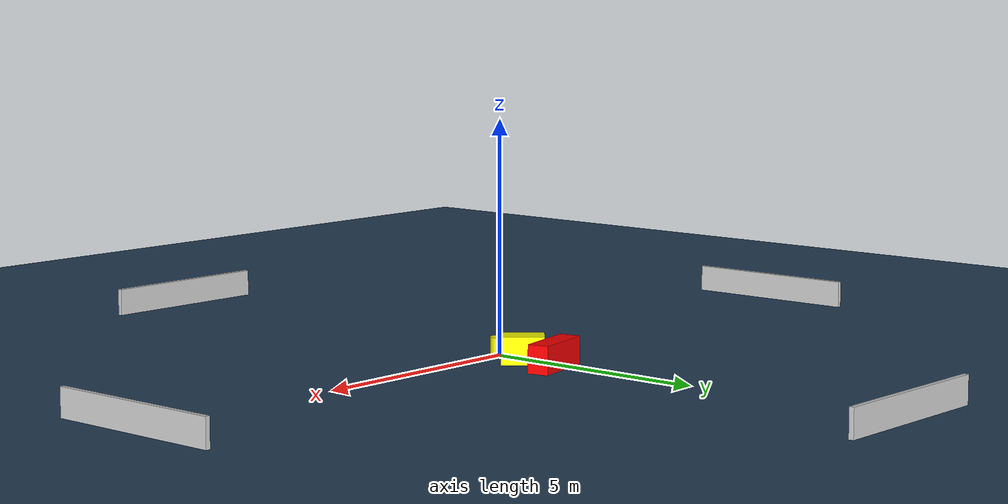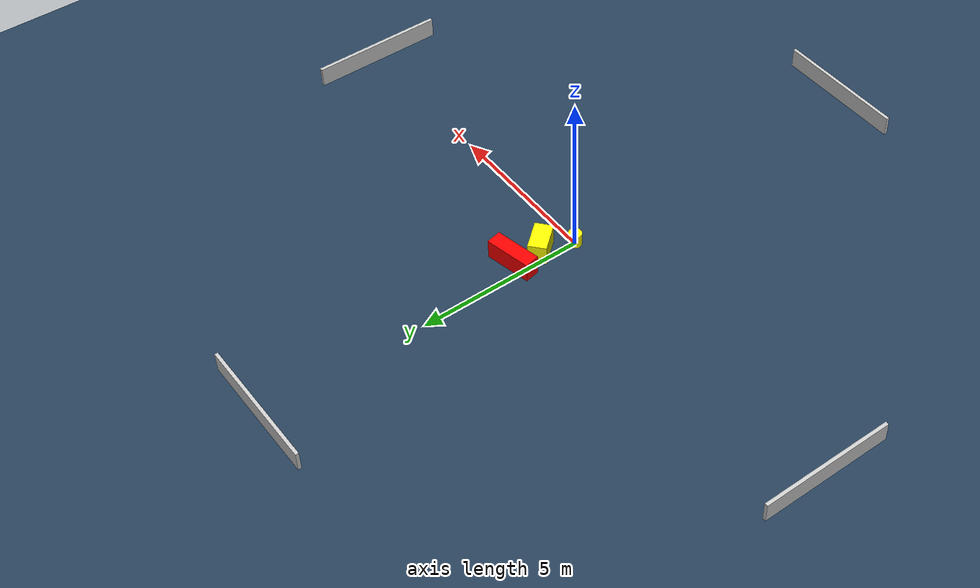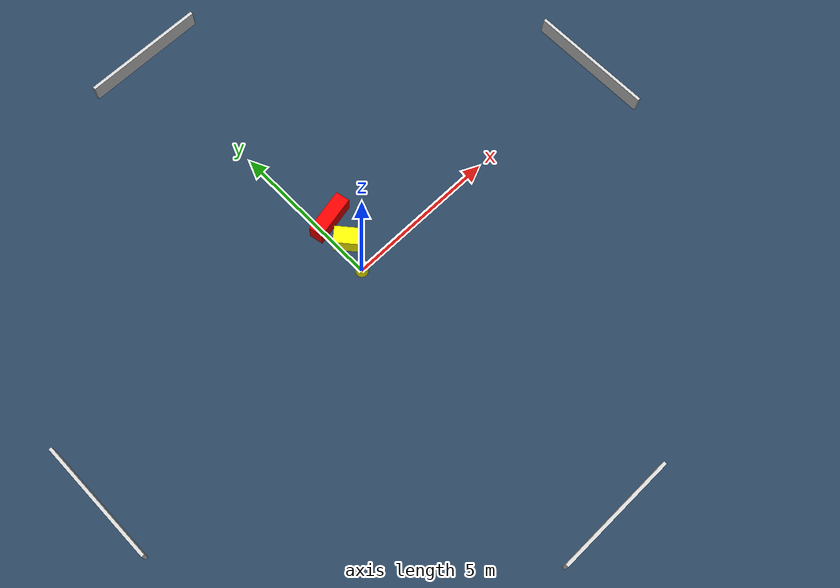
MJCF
<?xml version="1.0" ?>
<mujoco model="generated_environment">
  <option timestep="0.01" integrator="RK4" cone="elliptic"/>
  <default>
    <geom density="1"/>
  </default>
  <asset>
    <texture builtin="gradient" height="3072" name="skybox" rgb1="0.3 0.5 0.7" rgb2="0 0 0" type="skybox" width="512"/>
    <texture builtin="checker" height="300" name="groundplane" rgb1="0.2 0.3 0.4" rgb2="0.1 0.2 0.3" type="2d" width="300"/>
    <material name="groundplane" reflectance="0.2" texrepeat="5 5" texture="groundplane"/>
  </asset>
  <worldbody>
    <light dir="0 0 -1" directional="true" pos="0 0 1.5"/>
    <geom condim="3" friction="0.5 0.005 0.001" material="groundplane" name="floor" pos="0 0 0" size="0 0 0.05" type="plane"/>
    <body name="walls">
      <geom name="wall_1" condim="4" pos="-10.0 0.0 0.3" rgba="0.800000011920929 0.800000011920929 0.800000011920929 1.0" size="0.05 2.0 0.3" type="box"/>
      <geom name="wall_2" condim="4" pos="10.0 0.0 0.3" rgba="0.800000011920929 0.800000011920929 0.800000011920929 1.0" size="0.05 2.0 0.3" type="box"/>
      <geom name="wall_3" condim="4" pos="0.0 -10.0 0.3" rgba="0.800000011920929 0.800000011920929 0.800000011920929 1.0" size="2.0 0.05 0.3" type="box"/>
      <geom name="wall_4" condim="4" pos="0.0 10.0 0.3" rgba="0.800000011920929 0.800000011920929 0.800000011920929 1.0" size="2.0 0.05 0.3" type="box"/>
    </body>
    <body name="robot">
      <joint name="joint_x" type="slide" pos="0 0 0" axis="1 0 0"/>
      <joint name="joint_y" type="slide" pos="0 0 0" axis="0 1 0"/>
      <geom name="robot" type="cylinder" pos="0.0 0.0 0.2" size="0.2 0.2 0.0" mass="5.0" friction="1.0 0.005 0.0001" condim="4" rgba="1.0 1.0 0.0 1.0"/>
    </body>
    <body name="obstacle_1_movable">
      <geom name="obstacle_1_movable" condim="4" pos="0.3391914141245836 0.9276790682092392 0.3" euler="0 0 220.91500667497823" friction="0.0 0.005 0.001" rgba="1.0 1.0 0.0 1.0" size="0.26860470799679625 0.45641104978011016 0.3" type="box" mass="0.1"/>
      <joint type="free"/>
    </body>
    <body name="obstacle_2_static">
      <geom name="obstacle_2_static" condim="4" pos="0.39472860196823045 1.8252774515216181 0.3" euler="0 0 191.80653266634252" friction="0.0 0.005 0.001" rgba="1.0 0.0 0.0 1.0" size="0.7070798533787677 0.2270428121977978 0.3" type="box"/>
    </body>
  </worldbody>
  <actuator>
    <motor name="actuator_x" joint="joint_x" gear="1" ctrlrange="-1 1"/>
    <motor name="actuator_y" joint="joint_y" gear="1" ctrlrange="-1 1"/>
  </actuator>
</mujoco>
